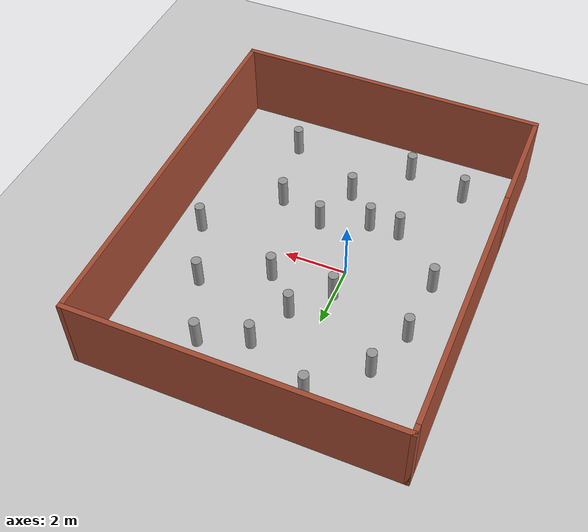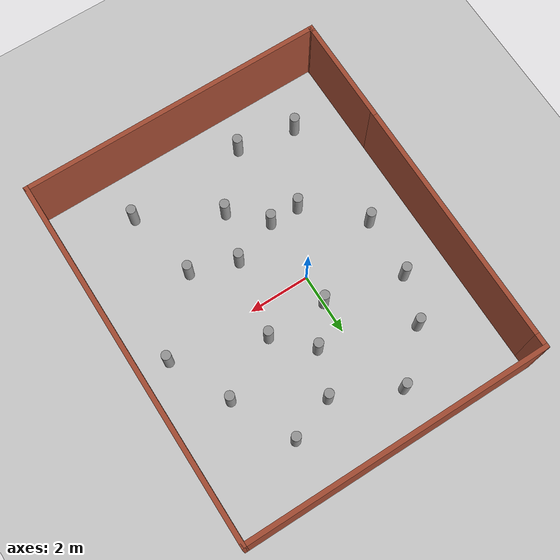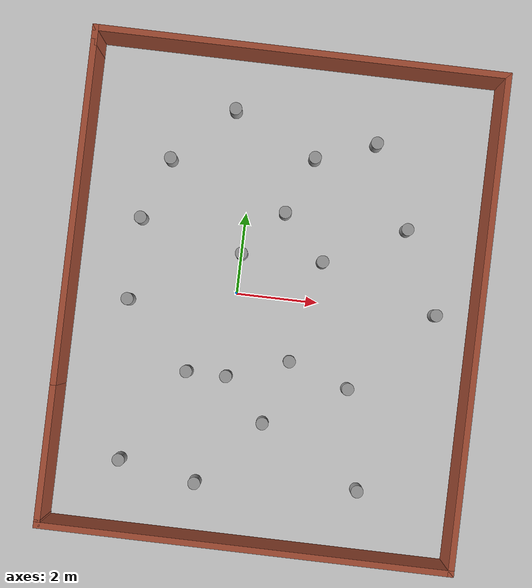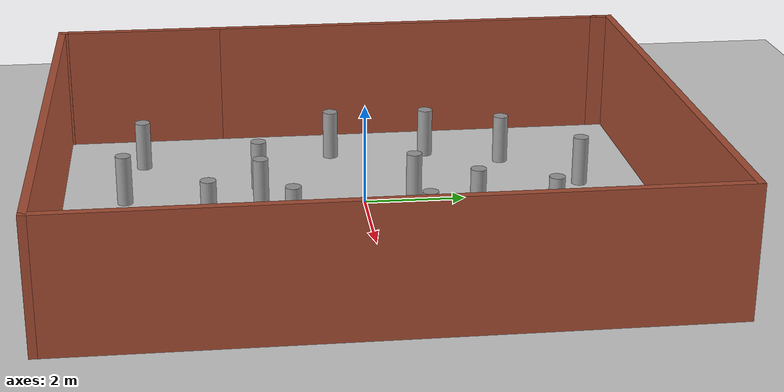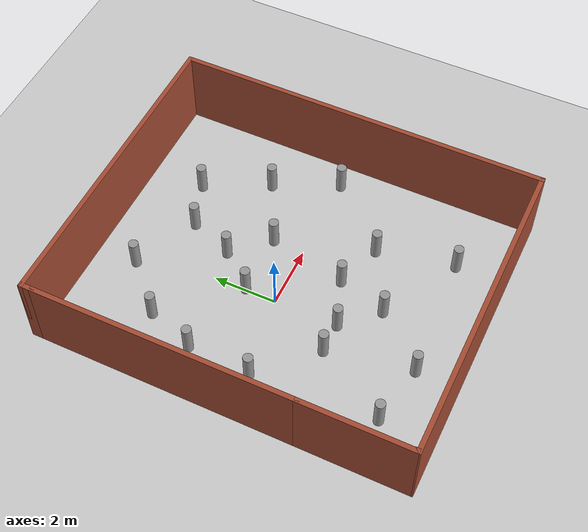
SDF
<sdf version="1.7">
 <world name="default">
  <light name="sun" type="directional">
   <pose>0 0 10 0 -0 0</pose>
   <diffuse>0.8 0.8 0.8 1</diffuse>
   <specular>0.2 0.2 0.2 1</specular>
   <attenuation>
    <range>1000</range>
    <constant>0.9</constant>
    <linear>0.01</linear>
    <quadratic>0.001</quadratic>
   </attenuation>
   <direction>-0.5 0.1 -0.9</direction>
   <spot><inner_angle>0</inner_angle><outer_angle>0</outer_angle><falloff>0</falloff></spot>
  </light>
  <model name="ground_plane">
   <static>1</static>
   <link name="link">
    <collision name="collision">
     <geometry><plane><normal>0 0 1</normal><size>100 100</size></plane></geometry>
     <surface>
      <contact><collide_bitmask>65535</collide_bitmask></contact>
      <friction><ode><mu>100</mu><mu2>50</mu2></ode></friction>
     </surface>
    </collision>
    <visual name="visual">
     <cast_shadows>0</cast_shadows>
     <geometry><plane><normal>0 0 1</normal><size>100 100</size></plane></geometry>
     <material>
      <script><uri>file://media/materials/scripts/gazebo.material</uri><name>Gazebo/Grey</name></script>
     </material>
    </visual>
   </link>
  </model>
  <gravity>0 0 -9.8</gravity>
  <magnetic_field>6e-06 2.3e-05 -4.2e-05</magnetic_field>
  <atmosphere type="adiabatic"/>
  <physics type="ode">
   <max_step_size>0.001</max_step_size>
   <real_time_factor>1</real_time_factor>
   <real_time_update_rate>1000</real_time_update_rate>
  </physics>
  <plugin name="gazebo_ros_factory" filename="libgazebo_ros_factory.so"/>
  <plugin name="gazebo_ros_state" filename="libgazebo_ros_state.so">
   <ros><namespace>/gazebo</namespace><remapping>get_model_state:=get_model_state</remapping></ros>
  </plugin>
  <scene><ambient>0.4 0.4 0.4 1</ambient><background>0.7 0.7 0.7 1</background><shadows>1</shadows></scene>
  <audio><device>default</device></audio>
  <spherical_coordinates>
   <surface_model>EARTH_WGS84</surface_model>
   <latitude_deg>0</latitude_deg>
   <longitude_deg>0</longitude_deg>
   <elevation>0</elevation>
   <heading_deg>0</heading_deg>
  </spherical_coordinates>
  <model name="mappp">
   <pose>0.915 -0.085 0 0 -0 0</pose>
   <link name="Wall_10">
    <collision name="Wall_10_Collision">
     <geometry><box><size>10 0.15 2.5</size></box></geometry>
     <pose>0 0 1.25 0 -0 0</pose>
    </collision>
    <visual name="Wall_10_Visual">
     <pose>0 0 1.25 0 -0 0</pose>
     <geometry><box><size>10 0.15 2.5</size></box></geometry>
     <material>
      <script><uri>file://media/materials/scripts/gazebo.material</uri><name>Gazebo/Bricks</name></script>
      <ambient>1 1 1 1</ambient>
     </material>
     <meta><layer>0</layer></meta>
    </visual>
    <pose>-0 -5.925 0 0 -0 3.14159</pose>
   </link>
   <link name="Wall_2">
    <collision name="Wall_2_Collision">
     <geometry><box><size>3.5 0.15 2.5</size></box></geometry>
     <pose>0 0 1.25 0 -0 0</pose>
    </collision>
    <visual name="Wall_2_Visual">
     <pose>0 0 1.25 0 -0 0</pose>
     <geometry><box><size>3.5 0.15 2.5</size></box></geometry>
     <material>
      <script><uri>file://media/materials/scripts/gazebo.material</uri><name>Gazebo/Bricks</name></script>
      <ambient>1 1 1 1</ambient>
     </material>
     <meta><layer>0</layer></meta>
    </visual>
    <pose>-4.925 -4.2 0 0 -0 -1.5708</pose>
   </link>
   <link name="Wall_3">
    <collision name="Wall_3_Collision">
     <geometry><box><size>0.16 0.15 2.5</size></box></geometry>
     <pose>0 0 1.25 0 -0 0</pose>
    </collision>
    <visual name="Wall_3_Visual">
     <pose>0 0 1.25 0 -0 0</pose>
     <geometry><box><size>0.16 0.15 2.5</size></box></geometry>
     <material>
      <script><uri>file://media/materials/scripts/gazebo.material</uri><name>Gazebo/Bricks</name></script>
      <ambient>1 1 1 1</ambient>
     </material>
     <meta><layer>0</layer></meta>
    </visual>
    <pose>-4.92 -5.875 0 0 -0 0</pose>
   </link>
   <link name="Wall_6">
    <collision name="Wall_6_Collision">
     <geometry><box><size>8.25 0.15 2.5</size></box></geometry>
     <pose>0 0 1.25 0 -0 0</pose>
    </collision>
    <visual name="Wall_6_Visual">
     <pose>0 0 1.25 0 -0 0</pose>
     <geometry><box><size>8.25 0.15 2.5</size></box></geometry>
     <material>
      <script><uri>file://media/materials/scripts/gazebo.material</uri><name>Gazebo/Bricks</name></script>
      <ambient>1 1 1 1</ambient>
     </material>
     <meta><layer>0</layer></meta>
    </visual>
    <pose>-4.925 1.525 0 0 -0 1.5708</pose>
   </link>
   <link name="Wall_7">
    <collision name="Wall_7_Collision">
     <geometry><box><size>0.5 0.15 2.5</size></box></geometry>
     <pose>0 0 1.25 0 -0 0</pose>
    </collision>
    <visual name="Wall_7_Visual">
     <pose>0 0 1.25 0 -0 0</pose>
     <geometry><box><size>0.5 0.15 2.5</size></box></geometry>
     <material>
      <script><uri>file://media/materials/scripts/gazebo.material</uri><name>Gazebo/Bricks</name></script>
      <ambient>1 1 1 1</ambient>
     </material>
     <meta><layer>0</layer></meta>
    </visual>
    <pose>-4.925 5.75 0 0 -0 1.5708</pose>
   </link>
   <link name="Wall_8">
    <collision name="Wall_8_Collision">
     <geometry><box><size>10 0.15 2.5</size></box></geometry>
     <pose>0 0 1.25 0 -0 0</pose>
    </collision>
    <visual name="Wall_8_Visual">
     <pose>0 0 1.25 0 -0 0</pose>
     <geometry><box><size>10 0.15 2.5</size></box></geometry>
     <material>
      <script><uri>file://media/materials/scripts/gazebo.material</uri><name>Gazebo/Bricks</name></script>
      <ambient>1 1 1 1</ambient>
     </material>
     <meta><layer>0</layer></meta>
    </visual>
    <pose>-0 5.925 0 0 -0 0</pose>
   </link>
   <link name="Wall_9">
    <collision name="Wall_9_Collision">
     <geometry><box><size>12 0.15 2.5</size></box></geometry>
     <pose>0 0 1.25 0 -0 0</pose>
    </collision>
    <visual name="Wall_9_Visual">
     <pose>0 0 1.25 0 -0 0</pose>
     <geometry><box><size>12 0.15 2.5</size></box></geometry>
     <material>
      <script><uri>file://media/materials/scripts/gazebo.material</uri><name>Gazebo/Bricks</name></script>
      <ambient>1 1 1 1</ambient>
     </material>
     <meta><layer>0</layer></meta>
    </visual>
    <pose>4.925 0 0 0 -0 -1.5708</pose>
   </link>
   <static>1</static>
  </model>
  <model name="unit_cylinder">
   <pose>2.01088 1.00487 0.499992 0 -0 -4e-06</pose>
   <link name="link">
    <inertial>
     <mass>1</mass>
     <inertia><ixx>0.145833</ixx><ixy>0</ixy><ixz>0</ixz><iyy>0.145833</iyy><iyz>0</iyz><izz>0.125</izz></inertia>
    </inertial>
    <collision name="collision">
     <geometry><cylinder><radius>0.153777</radius><length>1</length></cylinder></geometry>
    </collision>
    <visual name="visual">
     <geometry><cylinder><radius>0.153777</radius><length>1</length></cylinder></geometry>
     <material>
      <script><name>Gazebo/Grey</name><uri>file://media/materials/scripts/gazebo.material</uri></script>
     </material>
    </visual>
   </link>
  </model>
  <model name="unit_cylinder_clone">
   <pose>2.97619 -2.01143 0.499992 0 -0 -4e-06</pose>
   <link name="link">
    <inertial>
     <mass>1</mass>
     <inertia><ixx>0.145833</ixx><ixy>0</ixy><ixz>0</ixz><iyy>0.145833</iyy><iyz>0</iyz><izz>0.125</izz></inertia>
    </inertial>
    <collision name="collision">
     <geometry><cylinder><radius>0.153777</radius><length>1</length></cylinder></geometry>
    </collision>
    <visual name="visual">
     <geometry><cylinder><radius>0.153777</radius><length>1</length></cylinder></geometry>
     <material>
      <script><name>Gazebo/Grey</name><uri>file://media/materials/scripts/gazebo.material</uri></script>
     </material>
    </visual>
   </link>
  </model>
  <model name="unit_cylinder_clone_0">
   <pose>-0.988292 -2.03954 0.499998 0 0 -3e-06</pose>
   <link name="link">
    <inertial>
     <mass>1</mass>
     <inertia><ixx>0.145833</ixx><ixy>0</ixy><ixz>0</ixz><iyy>0.145833</iyy><iyz>0</iyz><izz>0.125</izz></inertia>
    </inertial>
    <collision name="collision">
     <geometry><cylinder><radius>0.153777</radius><length>1</length></cylinder></geometry>
    </collision>
    <visual name="visual">
     <geometry><cylinder><radius>0.153777</radius><length>1</length></cylinder></geometry>
     <material>
      <script><name>Gazebo/Grey</name><uri>file://media/materials/scripts/gazebo.material</uri></script>
     </material>
    </visual>
   </link>
  </model>
  <model name="unit_cylinder_clone_1">
   <pose>0.01595 0.979627 0.499992 0 -0 -3e-06</pose>
   <link name="link">
    <inertial>
     <mass>1</mass>
     <inertia><ixx>0.145833</ixx><ixy>0</ixy><ixz>0</ixz><iyy>0.145833</iyy><iyz>0</iyz><izz>0.125</izz></inertia>
    </inertial>
    <collision name="collision">
     <geometry><cylinder><radius>0.153777</radius><length>1</length></cylinder></geometry>
    </collision>
    <visual name="visual">
     <geometry><cylinder><radius>0.153777</radius><length>1</length></cylinder></geometry>
     <material>
      <script><name>Gazebo/Grey</name><uri>file://media/materials/scripts/gazebo.material</uri></script>
     </material>
    </visual>
   </link>
  </model>
  <model name="unit_cylinder_clone_2">
   <pose>1.00326 -3.08417 0.499999 0 0 -4e-06</pose>
   <link name="link">
    <inertial>
     <mass>1</mass>
     <inertia><ixx>0.145833</ixx><ixy>0</ixy><ixz>0</ixz><iyy>0.145833</iyy><iyz>0</iyz><izz>0.125</izz></inertia>
    </inertial>
    <collision name="collision">
     <geometry><cylinder><radius>0.153777</radius><length>1</length></cylinder></geometry>
    </collision>
    <visual name="visual">
     <geometry><cylinder><radius>0.153777</radius><length>1</length></cylinder></geometry>
     <material>
      <script><name>Gazebo/Grey</name><uri>file://media/materials/scripts/gazebo.material</uri></script>
     </material>
    </visual>
   </link>
  </model>
  <model name="unit_cylinder_clone_3">
   <pose>0.963366 2.09657 0.499992 -0 -0 -4e-06</pose>
   <link name="link">
    <inertial>
     <mass>1</mass>
     <inertia><ixx>0.145833</ixx><ixy>0</ixy><ixz>0</ixz><iyy>0.145833</iyy><iyz>0</iyz><izz>0.125</izz></inertia>
    </inertial>
    <collision name="collision">
     <geometry><cylinder><radius>0.153777</radius><length>1</length></cylinder></geometry>
    </collision>
    <visual name="visual">
     <geometry><cylinder><radius>0.153777</radius><length>1</length></cylinder></geometry>
     <material>
      <script><name>Gazebo/Grey</name><uri>file://media/materials/scripts/gazebo.material</uri></script>
     </material>
    </visual>
   </link>
  </model>
  <model name="unit_cylinder_clone_4">
   <pose>1.48571 -1.50973 0.499991 -0 -0 -4e-06</pose>
   <link name="link">
    <inertial>
     <mass>1</mass>
     <inertia><ixx>0.145833</ixx><ixy>0</ixy><ixz>0</ixz><iyy>0.145833</iyy><iyz>0</iyz><izz>0.125</izz></inertia>
    </inertial>
    <collision name="collision">
     <geometry><cylinder><radius>0.153777</radius><length>1</length></cylinder></geometry>
    </collision>
    <visual name="visual">
     <geometry><cylinder><radius>0.153777</radius><length>1</length></cylinder></geometry>
     <material>
      <script><name>Gazebo/Grey</name><uri>file://media/materials/scripts/gazebo.material</uri></script>
     </material>
    </visual>
   </link>
  </model>
  <model name="unit_cylinder_clone_5">
   <pose>-0.012805 -2.04671 0.499992 0 -0 -3e-06</pose>
   <link name="link">
    <inertial>
     <mass>1</mass>
     <inertia><ixx>0.145833</ixx><ixy>0</ixy><ixz>0</ixz><iyy>0.145833</iyy><iyz>0</iyz><izz>0.125</izz></inertia>
    </inertial>
    <collision name="collision">
     <geometry><cylinder><radius>0.153777</radius><length>1</length></cylinder></geometry>
    </collision>
    <visual name="visual">
     <geometry><cylinder><radius>0.153777</radius><length>1</length></cylinder></geometry>
     <material>
      <script><name>Gazebo/Grey</name><uri>file://media/materials/scripts/gazebo.material</uri></script>
     </material>
    </visual>
   </link>
  </model>
  <model name="unit_cylinder_clone_6">
   <pose>-1.97284 3.08807 0.499999 0 0 -4e-06</pose>
   <link name="link">
    <inertial>
     <mass>1</mass>
     <inertia><ixx>0.145833</ixx><ixy>0</ixy><ixz>0</ixz><iyy>0.145833</iyy><iyz>0</iyz><izz>0.125</izz></inertia>
    </inertial>
    <collision name="collision">
     <geometry><cylinder><radius>0.153777</radius><length>1</length></cylinder></geometry>
    </collision>
    <visual name="visual">
     <geometry><cylinder><radius>0.153777</radius><length>1</length></cylinder></geometry>
     <material>
      <script><name>Gazebo/Grey</name><uri>file://media/materials/scripts/gazebo.material</uri></script>
     </material>
    </visual>
   </link>
  </model>
  <model name="unit_cylinder_clone_7">
   <pose>2.99305 4.03371 0.499991 0 -0 -4e-06</pose>
   <link name="link">
    <inertial>
     <mass>1</mass>
     <inertia><ixx>0.145833</ixx><ixy>0</ixy><ixz>0</ixz><iyy>0.145833</iyy><iyz>0</iyz><izz>0.125</izz></inertia>
    </inertial>
    <collision name="collision">
     <geometry><cylinder><radius>0.153777</radius><length>1</length></cylinder></geometry>
    </collision>
    <visual name="visual">
     <geometry><cylinder><radius>0.153777</radius><length>1</length></cylinder></geometry>
     <material>
      <script><name>Gazebo/Grey</name><uri>file://media/materials/scripts/gazebo.material</uri></script>
     </material>
    </visual>
   </link>
  </model>
  <model name="unit_cylinder_clone_8">
   <pose>4.90794 0.024778 0.499999 0 0 -4e-06</pose>
   <link name="link">
    <inertial>
     <mass>1</mass>
     <inertia><ixx>0.145833</ixx><ixy>0</ixy><ixz>0</ixz><iyy>0.145833</iyy><iyz>0</iyz><izz>0.125</izz></inertia>
    </inertial>
    <collision name="collision">
     <geometry><cylinder><radius>0.153777</radius><length>1</length></cylinder></geometry>
    </collision>
    <visual name="visual">
     <geometry><cylinder><radius>0.153777</radius><length>1</length></cylinder></geometry>
     <material>
      <script><name>Gazebo/Grey</name><uri>file://media/materials/scripts/gazebo.material</uri></script>
     </material>
    </visual>
   </link>
  </model>
  <model name="unit_cylinder_clone_9">
   <pose>3.97573 2.02517 0.499998 0 0 -3e-06</pose>
   <link name="link">
    <inertial>
     <mass>1</mass>
     <inertia><ixx>0.145833</ixx><ixy>0</ixy><ixz>0</ixz><iyy>0.145833</iyy><iyz>0</iyz><izz>0.125</izz></inertia>
    </inertial>
    <collision name="collision">
     <geometry><cylinder><radius>0.153777</radius><length>1</length></cylinder></geometry>
    </collision>
    <visual name="visual">
     <geometry><cylinder><radius>0.153777</radius><length>1</length></cylinder></geometry>
     <material>
      <script><name>Gazebo/Grey</name><uri>file://media/materials/scripts/gazebo.material</uri></script>
     </material>
    </visual>
   </link>
  </model>
  <model name="unit_cylinder_clone_10">
   <pose>1.5308 3.5069 0.499992 -0 -0 -3e-06</pose>
   <link name="link">
    <inertial>
     <mass>1</mass>
     <inertia><ixx>0.145833</ixx><ixy>0</ixy><ixz>0</ixz><iyy>0.145833</iyy><iyz>0</iyz><izz>0.125</izz></inertia>
    </inertial>
    <collision name="collision">
     <geometry><cylinder><radius>0.153777</radius><length>1</length></cylinder></geometry>
    </collision>
    <visual name="visual">
     <geometry><cylinder><radius>0.153777</radius><length>1</length></cylinder></geometry>
     <material>
      <script><name>Gazebo/Grey</name><uri>file://media/materials/scripts/gazebo.material</uri></script>
     </material>
    </visual>
   </link>
  </model>
  <model name="unit_cylinder_clone_11">
   <pose>3.49069 -4.45442 0.499991 0 -0 -4e-06</pose>
   <link name="link">
    <inertial>
     <mass>1</mass>
     <inertia><ixx>0.145833</ixx><ixy>0</ixy><ixz>0</ixz><iyy>0.145833</iyy><iyz>0</iyz><izz>0.125</izz></inertia>
    </inertial>
    <collision name="collision">
     <geometry><cylinder><radius>0.153777</radius><length>1</length></cylinder></geometry>
    </collision>
    <visual name="visual">
     <geometry><cylinder><radius>0.153777</radius><length>1</length></cylinder></geometry>
     <material>
      <script><name>Gazebo/Grey</name><uri>file://media/materials/scripts/gazebo.material</uri></script>
     </material>
    </visual>
   </link>
  </model>
  <model name="unit_cylinder_clone_12">
   <pose>-2.37014 -4.36832 0.499992 0 -0 -4e-06</pose>
   <link name="link">
    <inertial>
     <mass>1</mass>
     <inertia><ixx>0.145833</ixx><ixy>0</ixy><ixz>0</ixz><iyy>0.145833</iyy><iyz>0</iyz><izz>0.125</izz></inertia>
    </inertial>
    <collision name="collision">
     <geometry><cylinder><radius>0.153777</radius><length>1</length></cylinder></geometry>
    </collision>
    <visual name="visual">
     <geometry><cylinder><radius>0.153777</radius><length>1</length></cylinder></geometry>
     <material>
      <script><name>Gazebo/Grey</name><uri>file://media/materials/scripts/gazebo.material</uri></script>
     </material>
    </visual>
   </link>
  </model>
  <model name="unit_cylinder_clone_13">
   <pose>-2.6185 -0.444906 0.499999 0 0 -4e-06</pose>
   <link name="link">
    <inertial>
     <mass>1</mass>
     <inertia><ixx>0.145833</ixx><ixy>0</ixy><ixz>0</ixz><iyy>0.145833</iyy><iyz>0</iyz><izz>0.125</izz></inertia>
    </inertial>
    <collision name="collision">
     <geometry><cylinder><radius>0.153777</radius><length>1</length></cylinder></geometry>
    </collision>
    <visual name="visual">
     <geometry><cylinder><radius>0.153777</radius><length>1</length></cylinder></geometry>
     <material>
      <script><name>Gazebo/Grey</name><uri>file://media/materials/scripts/gazebo.material</uri></script>
     </material>
    </visual>
   </link>
  </model>
  <model name="unit_cylinder_clone_14">
   <pose>-2.53255 1.5657 0.499998 0 0 -3e-06</pose>
   <link name="link">
    <inertial>
     <mass>1</mass>
     <inertia><ixx>0.145833</ixx><ixy>0</ixy><ixz>0</ixz><iyy>0.145833</iyy><iyz>0</iyz><izz>0.125</izz></inertia>
    </inertial>
    <collision name="collision">
     <geometry><cylinder><radius>0.153777</radius><length>1</length></cylinder></geometry>
    </collision>
    <visual name="visual">
     <geometry><cylinder><radius>0.153777</radius><length>1</length></cylinder></geometry>
     <material>
      <script><name>Gazebo/Grey</name><uri>file://media/materials/scripts/gazebo.material</uri></script>
     </material>
    </visual>
   </link>
  </model>
  <model name="unit_cylinder_clone_15">
   <pose>-0.531939 4.46253 0.499992 0 -0 -3e-06</pose>
   <link name="link">
    <inertial>
     <mass>1</mass>
     <inertia><ixx>0.145833</ixx><ixy>0</ixy><ixz>0</ixz><iyy>0.145833</iyy><iyz>0</iyz><izz>0.125</izz></inertia>
    </inertial>
    <collision name="collision">
     <geometry><cylinder><radius>0.153777</radius><length>1</length></cylinder></geometry>
    </collision>
    <visual name="visual">
     <geometry><cylinder><radius>0.153777</radius><length>1</length></cylinder></geometry>
     <material>
      <script><name>Gazebo/Grey</name><uri>file://media/materials/scripts/gazebo.material</uri></script>
     </material>
    </visual>
   </link>
  </model>
  <model name="unit_cylinder_clone_16">
   <pose>-0.473555 -4.71716 0.499998 0 0 -4e-06</pose>
   <link name="link">
    <inertial>
     <mass>1</mass>
     <inertia><ixx>0.145833</ixx><ixy>0</ixy><ixz>0</ixz><iyy>0.145833</iyy><iyz>0</iyz><izz>0.125</izz></inertia>
    </inertial>
    <collision name="collision">
     <geometry><cylinder><radius>0.153777</radius><length>1</length></cylinder></geometry>
    </collision>
    <visual name="visual">
     <geometry><cylinder><radius>0.153777</radius><length>1</length></cylinder></geometry>
     <material>
      <script><name>Gazebo/Grey</name><uri>file://media/materials/scripts/gazebo.material</uri></script>
     </material>
    </visual>
   </link>
  </model>
 </world>
</sdf>
